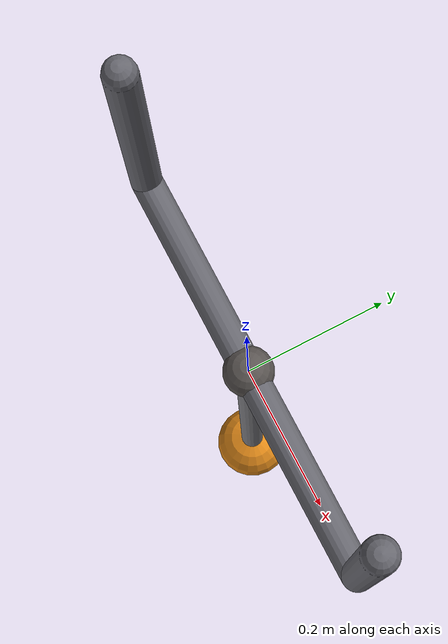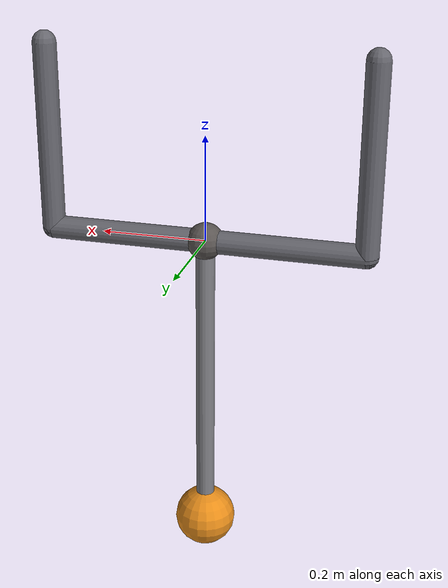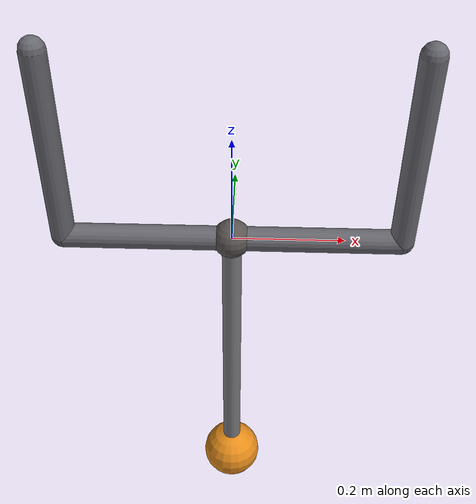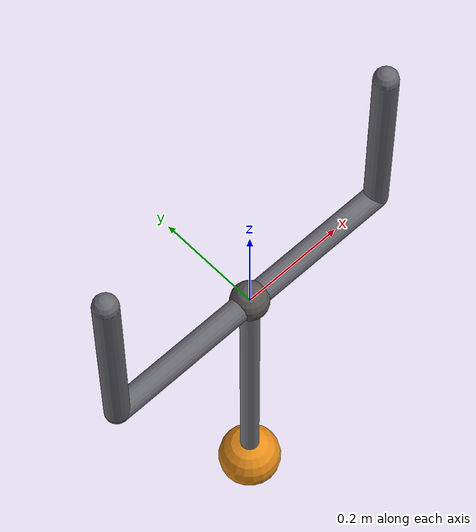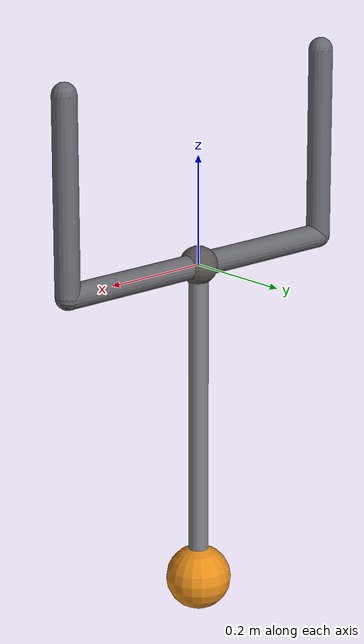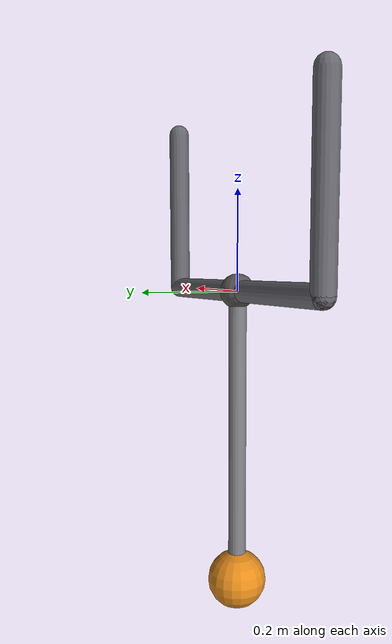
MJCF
<mujoco model="cone_limit_orbit">
    <compiler angle="radian"/>
    <option gravity="0 0 -9.81" timestep="0.001" integrator="RK4">
        <flag energy="enable"/>
    </option>

    <default>
        <geom contype="0" conaffinity="0"/>
    </default>

    <worldbody>
        <!-- Support frame -->
        <geom name="beam" type="capsule" size="0.022"
              fromto="-0.3 0 0  0.3 0 0" rgba="0.40 0.40 0.43 1"/>
        <geom name="post_l" type="capsule" size="0.022"
              fromto="-0.3 0 0  -0.3 0 0.35" rgba="0.40 0.40 0.43 1"/>
        <geom name="post_r" type="capsule" size="0.022"
              fromto="0.3 0 0  0.3 0 0.35" rgba="0.40 0.40 0.43 1"/>

        <!-- Pendulum: ball joint with 30° cone limit -->
        <body name="pendulum" pos="0 0 0">
            <joint name="ball" type="ball" damping="0.002"
                   limited="true" range="0 0.7854"/>
            <inertial pos="0 0 -0.6" mass="1.0" diaginertia="0.001 0.001 0.001"/>
            <geom name="socket" type="sphere" size="0.035"
                  pos="0 0 0" rgba="0.35 0.33 0.32 1"/>
            <geom name="rod" type="capsule" size="0.018"
                  fromto="0 0 0  0 0 -0.6" rgba="0.48 0.48 0.50 1"/>
            <geom name="tip" type="sphere" size="0.06"
                  pos="0 0 -0.6" rgba="0.9 0.55 0.1 1"/>
        </body>
    </worldbody>
</mujoco>
